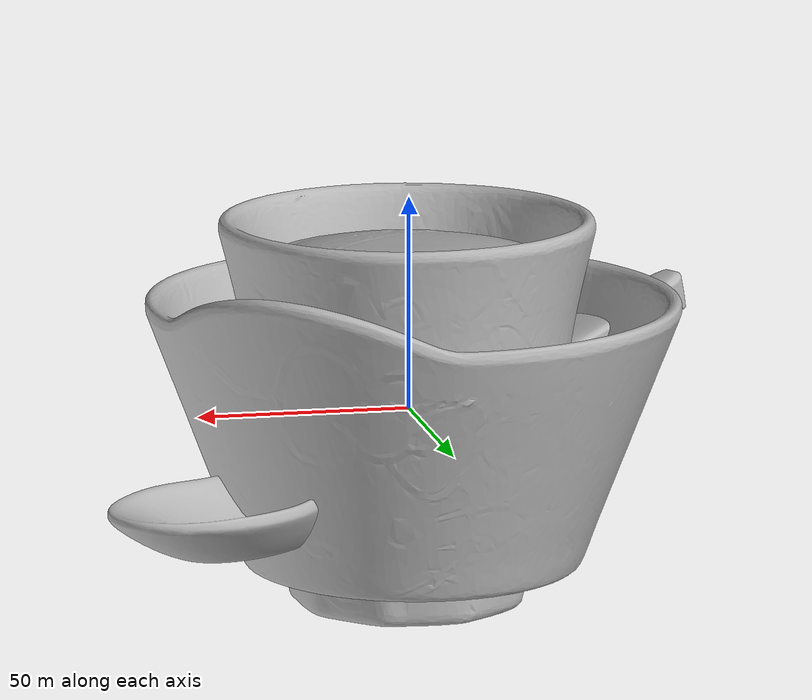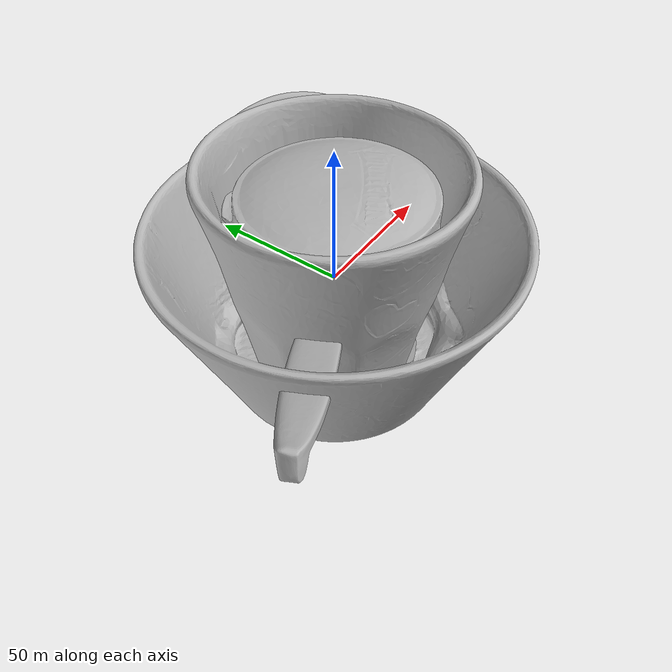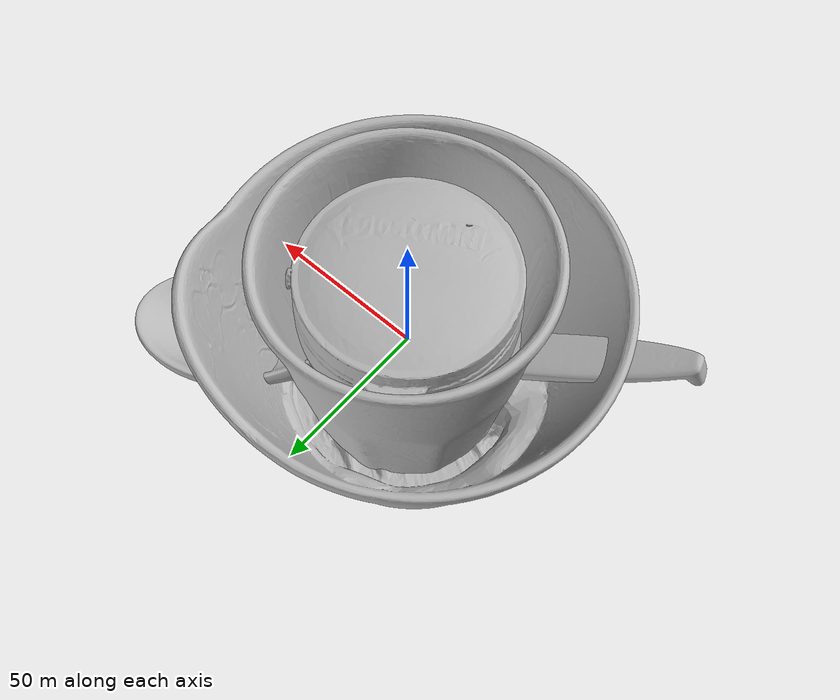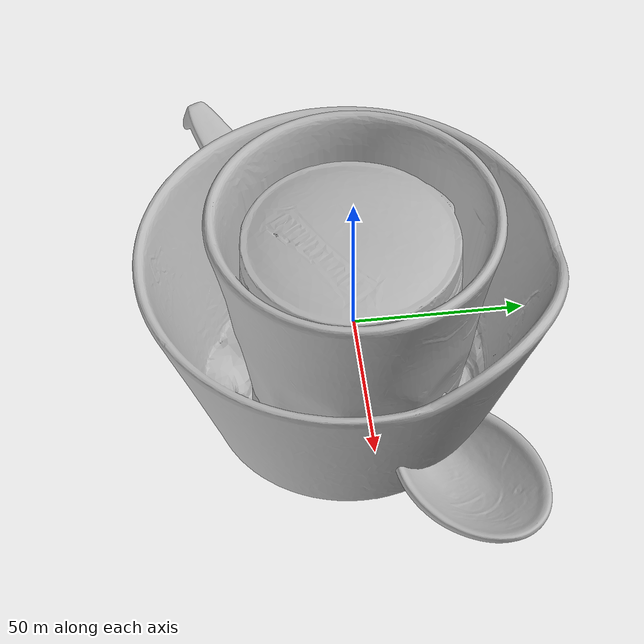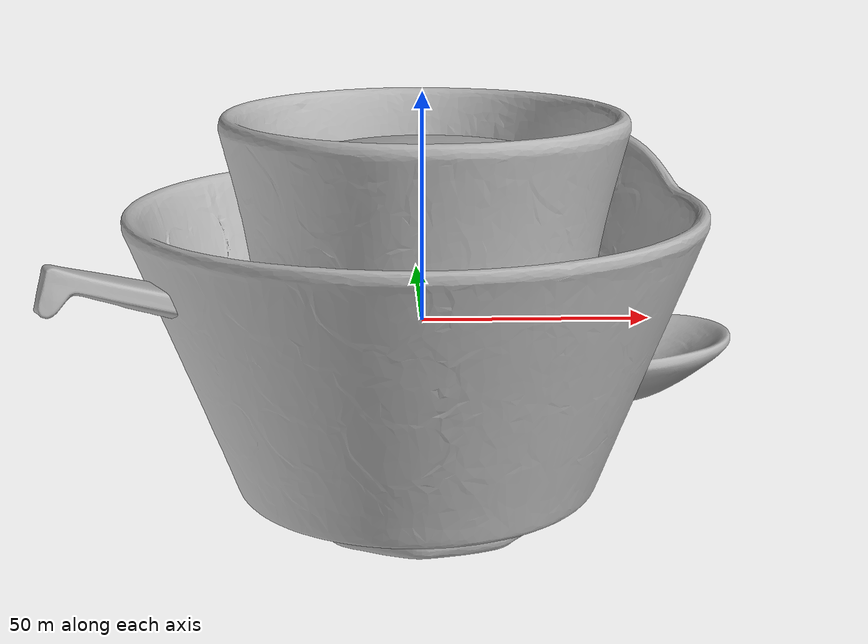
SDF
<sdf version="1.4">
 <world name="default">
  <light name="light1" type="point">
   <pose>0 0 1 0 0 0</pose>
   <diffuse>3 3 3 1</diffuse>
   <specular>3 3 3 1</specular>
  </light>
  <light name="light2" type="point">
   <pose>0 0.5 2 0 0 0</pose>
   <diffuse>1 1 1 1</diffuse>
   <specular>1 1 1 1</specular>
  </light>
  <light name="light3" type="point">
   <pose>0 0.5 2 0 0 0</pose>
   <diffuse>3 3 3 1</diffuse>
   <specular>3 3 3 1</specular>
  </light>
  <scene><ambient>0.7 0.7 0.7</ambient></scene>
  <model name="bottle1">
   <link name="link_bottle1">
    <collision name="default">
     <geometry>
      <mesh><uri>model://green_arrow/collision_meshes/collision.obj</uri><scale>1.0 1.0 1.0</scale></mesh>
     </geometry>
     <surface>
      <friction><ode><mu>0.5</mu><mu2>0.5</mu2></ode></friction>
      <contact><ode><max_vel>0</max_vel><min_depth>0.0001</min_depth><kp>1e8</kp></ode></contact>
     </surface>
    </collision>
    <visual name="default">
     <geometry>
      <mesh><uri>model://green_arrow/visual_meshes/visual.dae</uri><scale>1.0 1.0 1.0</scale></mesh>
     </geometry>
    </visual>
    <inertial>
     <mass>0.2764224410057068</mass>
     <pose>0.0005358477937988937 -0.0008270691032521427 0.002210969105362892 -0.06332196008274972 0.012988210902137025 0.674142157837799</pose>
     <inertia>
      <ixx>0.00020051825</ixx>
      <iyy>0.00020021446</iyy>
      <izz>0.00012947427</izz>
      <ixy>0</ixy>
      <ixz>0</ixz>
      <iyz>0</iyz>
     </inertia>
    </inertial>
   </link>
   <pose>0.12358023226261139 0.125372514128685 0.03903081640601158 0.03851642472722781 0.024628466312832702 -0.09826585280689763</pose>
  </model>
  <model name="bottle2">
   <link name="link_bottle2">
    <collision name="default">
     <geometry>
      <mesh><uri>model://pure_zhen/collision_meshes/collision.obj</uri><scale>1.0 1.0 1.0</scale></mesh>
     </geometry>
     <surface>
      <friction><ode><mu>0.5</mu><mu2>0.5</mu2></ode></friction>
      <contact><ode><max_vel>0</max_vel><min_depth>0.0001</min_depth><kp>1e8</kp></ode></contact>
     </surface>
    </collision>
    <visual name="default">
     <geometry>
      <mesh><uri>model://pure_zhen/visual_meshes/visual.dae</uri><scale>1.0 1.0 1.0</scale></mesh>
     </geometry>
    </visual>
    <inertial>
     <mass>0.2372884750366211</mass>
     <pose>-8.582299778936431e-05 0.0002452346670906991 -0.0015797418309375644 -0.027641670524606855 0.005623077019143168 0.30585846122319743</pose>
     <inertia>
      <ixx>0.0007112664</ixx>
      <iyy>0.00071145216</iyy>
      <izz>7.51383e-05</izz>
      <ixy>0</ixy>
      <ixz>0</ixz>
      <iyz>0</iyz>
     </inertia>
    </inertial>
   </link>
   <pose>0.06147235631942749 0.37285444140434265 0.09196113049983978 0.017159329125544437 -0.0010030409854449864 -2.1463538613017543</pose>
  </model>
  <model name="silverware1">
   <link name="link_silverware1">
    <collision name="default">
     <geometry>
      <mesh><uri>model://doraemon_spoon/collision_meshes/collision.obj</uri><scale>1.0 1.0 1.0</scale></mesh>
     </geometry>
     <surface>
      <friction><ode><mu>0.5</mu><mu2>0.5</mu2></ode></friction>
      <contact><ode><max_vel>0</max_vel><min_depth>0.0001</min_depth><kp>1e8</kp></ode></contact>
     </surface>
    </collision>
    <visual name="default">
     <geometry>
      <mesh><uri>model://doraemon_spoon/visual_meshes/visual.dae</uri><scale>1.0 1.0 1.0</scale></mesh>
     </geometry>
    </visual>
    <inertial>
     <mass>0.020818473771214485</mass>
     <pose>-0.022165074944496155 -0.0006374582881107926 -0.0033325462136417627 -0.009147017253597407 0.0738041759980984 -0.014123826591698564</pose>
     <inertia>
      <ixx>1.6307007e-06</ixx>
      <iyy>4.631433e-05</iyy>
      <izz>4.7101734e-05</izz>
      <ixy>0</ixy>
      <ixz>0</ixz>
      <iyz>0</iyz>
     </inertia>
    </inertial>
   </link>
   <pose>0.015235431492328644 -0.13890685141086578 0.025966458022594452 -0.01064669681453529 -0.32499036797027236 -2.6207855340712785</pose>
  </model>
  <model name="stationery1">
   <link name="link_stationery1">
    <collision name="default">
     <geometry>
      <mesh><uri>model://correction_fuid/collision_meshes/collision.obj</uri><scale>1.0 1.0 1.0</scale></mesh>
     </geometry>
     <surface>
      <friction><ode><mu>0.5</mu><mu2>0.5</mu2></ode></friction>
      <contact><ode><max_vel>0</max_vel><min_depth>0.0001</min_depth><kp>1e8</kp></ode></contact>
     </surface>
    </collision>
    <visual name="default">
     <geometry>
      <mesh><uri>model://correction_fuid/visual_meshes/visual.dae</uri><scale>1.0 1.0 1.0</scale></mesh>
     </geometry>
    </visual>
    <inertial>
     <mass>0.03337494283914566</mass>
     <pose>-0.00012557735317386687 -0.0009722886024974287 -0.001618212671019137 -0.010846603423614418 0.019488389217657873 -0.01599245375892703</pose>
     <inertia>
      <ixx>3.2324202e-05</ixx>
      <iyy>1.9563013e-06</iyy>
      <izz>3.3165503e-05</izz>
      <ixy>0</ixy>
      <ixz>0</ixz>
      <iyz>0</iyz>
     </inertia>
    </inertial>
   </link>
   <pose>0.04581066966056824 0.26597312092781067 0.009655645117163658 -0.005184598794207572 -0.03520168525364889 0.3810538784561388</pose>
  </model>
  <model name="bowl1">
   <link name="link_bowl1">
    <collision name="default">
     <geometry>
      <mesh><uri>model://hello_kitty_bowl/collision_meshes/collision.obj</uri><scale>1.0 1.0 1.0</scale></mesh>
     </geometry>
     <surface>
      <friction><ode><mu>0.5</mu><mu2>0.5</mu2></ode></friction>
      <contact><ode><max_vel>0</max_vel><min_depth>0.0001</min_depth><kp>1e8</kp></ode></contact>
     </surface>
    </collision>
    <visual name="default">
     <geometry>
      <mesh><uri>model://hello_kitty_bowl/visual_meshes/visual.dae</uri><scale>1.0 1.0 1.0</scale></mesh>
     </geometry>
    </visual>
    <inertial>
     <mass>0.11590971797704697</mass>
     <pose>-0.0015402117278426886 0.0004577837826218456 -0.0080512510612607 0.004152729053700843 -0.12227221811834889 0.04345084117661168</pose>
     <inertia>
      <ixx>0.00017210246</ixx>
      <iyy>0.00018182951</iyy>
      <izz>0.00025734986</izz>
      <ixy>0</ixy>
      <ixz>0</ixz>
      <iyz>0</iyz>
     </inertia>
    </inertial>
   </link>
   <pose>0.08674491196870804 -0.33243951201438904 0.037414249032735825 3.2851873277085107e-05 6.753475694069083e-06 0.760443276610399</pose>
  </model>
  <model name="cup1">
   <link name="link_cup1">
    <collision name="default">
     <geometry>
      <mesh><uri>model://hello_kitty_cup/collision_meshes/collision.obj</uri><scale>1.0 1.0 1.0</scale></mesh>
     </geometry>
     <surface>
      <friction><ode><mu>0.5</mu><mu2>0.5</mu2></ode></friction>
      <contact><ode><max_vel>0</max_vel><min_depth>0.0001</min_depth><kp>1e8</kp></ode></contact>
     </surface>
    </collision>
    <visual name="default">
     <geometry>
      <mesh><uri>model://hello_kitty_cup/visual_meshes/visual.dae</uri><scale>1.0 1.0 1.0</scale></mesh>
     </geometry>
    </visual>
    <inertial>
     <mass>0.06483803689479828</mass>
     <pose>0.00027251249412074685 0.0002795030304696411 0.003044978016987443 0.05779149237921037 0.007964744961503711 -0.020451485374324563</pose>
     <inertia>
      <ixx>8.928983e-05</ixx>
      <iyy>9.0285175e-05</iyy>
      <izz>7.52867e-05</izz>
      <ixy>0</ixy>
      <ixz>0</ixz>
      <iyz>0</iyz>
     </inertia>
    </inertial>
   </link>
   <pose>-0.009780662134289742 0.293986052274704 0.04621622711420059 -0.005876857497609407 0.01079322367550746 -0.6592195498975051</pose>
  </model>
  <model name="plate1">
   <link name="link_plate1">
    <collision name="default">
     <geometry>
      <mesh><uri>model://hello_kitty_plate/collision_meshes/collision.obj</uri><scale>1.0 1.0 1.0</scale></mesh>
     </geometry>
     <surface>
      <friction><ode><mu>0.5</mu><mu2>0.5</mu2></ode></friction>
      <contact><ode><max_vel>0</max_vel><min_depth>0.0001</min_depth><kp>1e8</kp></ode></contact>
     </surface>
    </collision>
    <visual name="default">
     <geometry>
      <mesh><uri>model://hello_kitty_plate/visual_meshes/visual.dae</uri><scale>1.0 1.0 1.0</scale></mesh>
     </geometry>
    </visual>
    <inertial>
     <mass>0.035439908504486084</mass>
     <pose>0.007314295507967472 0.00028937257593497634 -0.0027947179041802883 -0.00010432032854243346 -0.007054443681780748 -0.014449040989024118</pose>
     <inertia>
      <ixx>6.833875e-05</ixx>
      <iyy>0.00012897578</iyy>
      <izz>0.00019583687</izz>
      <ixy>0</ixy>
      <ixz>0</ixz>
      <iyz>0</iyz>
     </inertia>
    </inertial>
   </link>
   <pose>0.11874082684516907 -0.12679804861545563 0.01573912240564823 -0.14192848143741973 -7.769372472603523e-06 -1.8553083921442994</pose>
  </model>
  <model name="box4">
   <link name="link_box4">
    <collision name="default">
     <geometry>
      <mesh><uri>model://wooden_puzzle1/collision_meshes/collision.obj</uri><scale>1.0 1.0 1.0</scale></mesh>
     </geometry>
     <surface>
      <friction><ode><mu>0.5</mu><mu2>0.5</mu2></ode></friction>
      <contact><ode><max_vel>0</max_vel><min_depth>0.0001</min_depth><kp>1e8</kp></ode></contact>
     </surface>
    </collision>
    <visual name="default">
     <geometry>
      <mesh><uri>model://wooden_puzzle1/visual_meshes/visual.dae</uri><scale>1.0 1.0 1.0</scale></mesh>
     </geometry>
    </visual>
    <inertial>
     <mass>0.022725893184542656</mass>
     <pose>-0.00017350679263472557 7.972260937094688e-05 -9.191554272547364e-05 -0.07784633272711022 -0.26361483493671084 -0.5528696267966513</pose>
     <inertia>
      <ixx>4.2877546e-06</ixx>
      <iyy>4.205213e-06</iyy>
      <izz>4.2553816e-06</izz>
      <ixy>0</ixy>
      <ixz>0</ixz>
      <iyz>0</iyz>
     </inertia>
    </inertial>
   </link>
   <pose>0.15810371935367584 -0.09237189590930939 0.022886738181114197 0.1354343485227725 -0.04256953652699541 1.6084766003361433</pose>
  </model>
  <physics type="ode">
   <max_contacts>50</max_contacts>
   <ode>
    <solver><type>quick</type><iters>75</iters></solver>
    <constraints>
     <contact_max_correcting_vel>0</contact_max_correcting_vel>
     <contact_surface_layer>0</contact_surface_layer>
    </constraints>
   </ode>
  </physics>
 </world>
</sdf>
